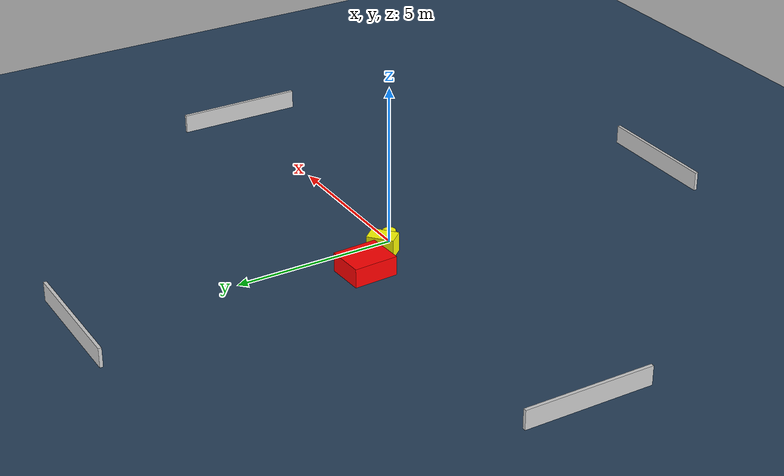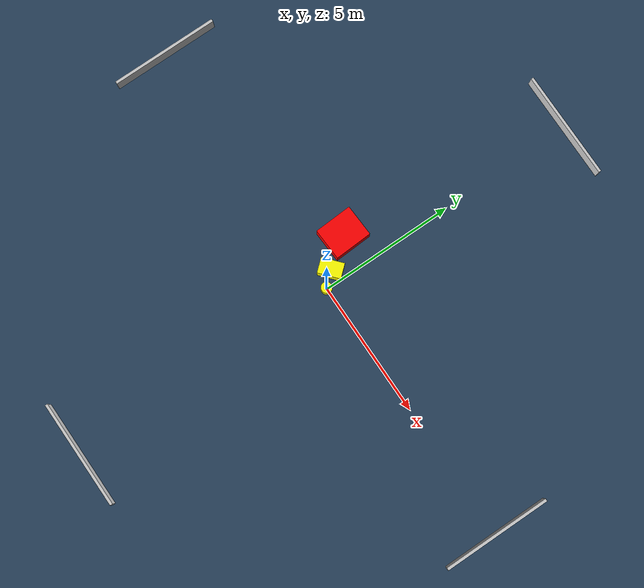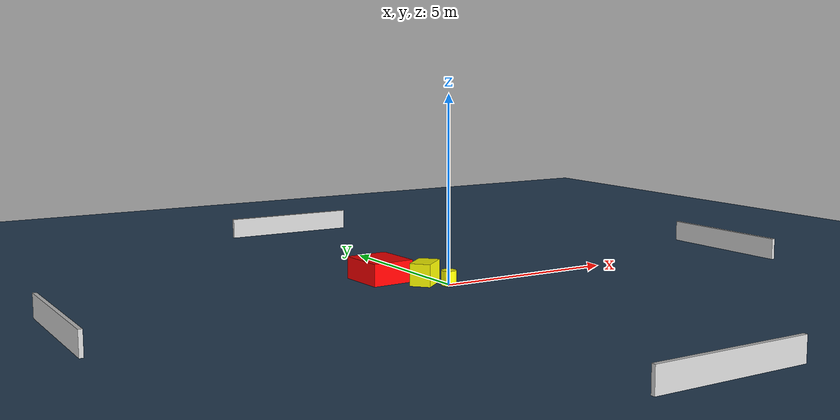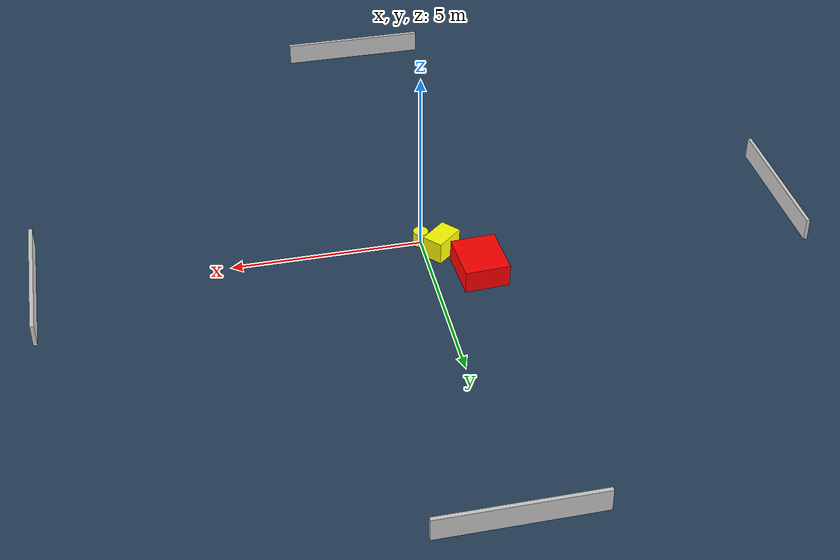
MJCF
<?xml version="1.0" ?>
<mujoco model="generated_environment">
  <option timestep="0.01" integrator="RK4" cone="elliptic"/>
  <default>
    <geom density="1"/>
  </default>
  <asset>
    <texture builtin="gradient" height="3072" name="skybox" rgb1="0.3 0.5 0.7" rgb2="0 0 0" type="skybox" width="512"/>
    <texture builtin="checker" height="300" name="groundplane" rgb1="0.2 0.3 0.4" rgb2="0.1 0.2 0.3" type="2d" width="300"/>
    <material name="groundplane" reflectance="0.2" texrepeat="5 5" texture="groundplane"/>
  </asset>
  <worldbody>
    <light dir="0 0 -1" directional="true" pos="0 0 1.5"/>
    <geom condim="3" friction="0.5 0.005 0.001" material="groundplane" name="floor" pos="0 0 0" size="0 0 0.05" type="plane"/>
    <body name="walls">
      <geom name="wall_1" condim="4" pos="-10.0 0.0 0.3" rgba="0.800000011920929 0.800000011920929 0.800000011920929 1.0" size="0.05 2.0 0.3" type="box"/>
      <geom name="wall_2" condim="4" pos="10.0 0.0 0.3" rgba="0.800000011920929 0.800000011920929 0.800000011920929 1.0" size="0.05 2.0 0.3" type="box"/>
      <geom name="wall_3" condim="4" pos="0.0 -10.0 0.3" rgba="0.800000011920929 0.800000011920929 0.800000011920929 1.0" size="2.0 0.05 0.3" type="box"/>
      <geom name="wall_4" condim="4" pos="0.0 10.0 0.3" rgba="0.800000011920929 0.800000011920929 0.800000011920929 1.0" size="2.0 0.05 0.3" type="box"/>
    </body>
    <body name="robot">
      <joint name="joint_x" type="slide" pos="0 0 0" axis="1 0 0"/>
      <joint name="joint_y" type="slide" pos="0 0 0" axis="0 1 0"/>
      <geom name="robot" type="cylinder" pos="0.0 0.0 0.2" size="0.2 0.2 0.0" mass="5.0" friction="1.0 0.005 0.0001" condim="4" rgba="1.0 1.0 0.0 1.0"/>
    </body>
    <body name="obstacle_1_movable">
      <geom name="obstacle_1_movable" condim="4" pos="-0.44835583332927836 0.4863588068198185 0.3" euler="0 0 311.0302166563019" friction="0.0 0.005 0.001" rgba="1.0 1.0 0.0 1.0" size="0.27977956829364065 0.41810249731755017 0.3" type="box" mass="0.1"/>
      <joint type="free"/>
    </body>
    <body name="obstacle_2_static">
      <geom name="obstacle_2_static" condim="4" pos="-1.223541995681529 1.5246787365403407 0.3" euler="0 0 272.88976089083314" friction="0.0 0.005 0.001" rgba="1.0 0.0 0.0 1.0" size="0.697020806632613 0.5878796948785441 0.3" type="box"/>
    </body>
  </worldbody>
  <actuator>
    <motor name="actuator_x" joint="joint_x" gear="1" ctrlrange="-1 1"/>
    <motor name="actuator_y" joint="joint_y" gear="1" ctrlrange="-1 1"/>
  </actuator>
</mujoco>
